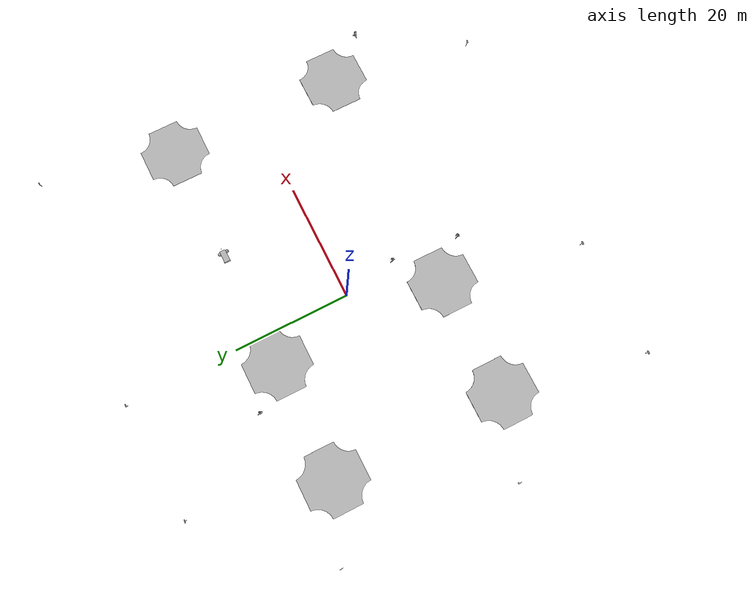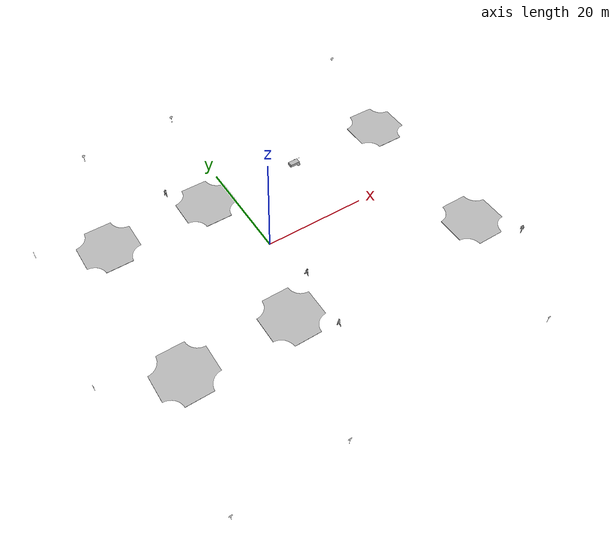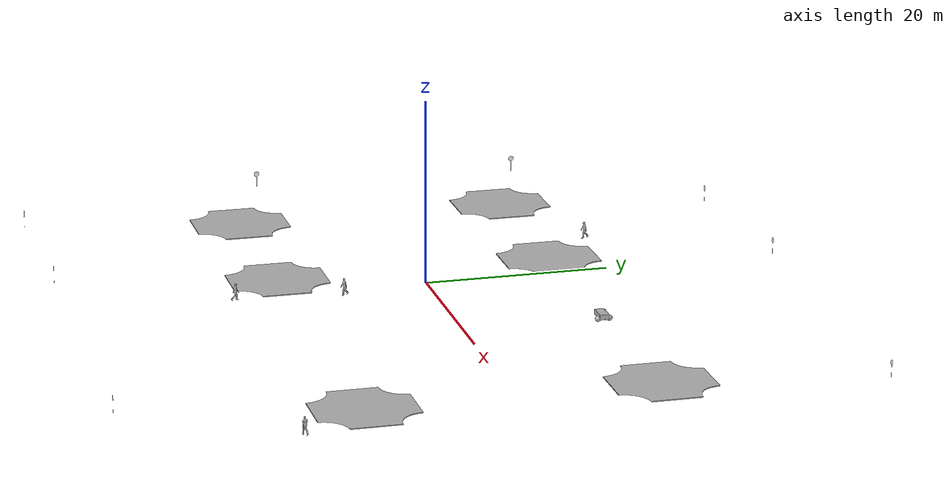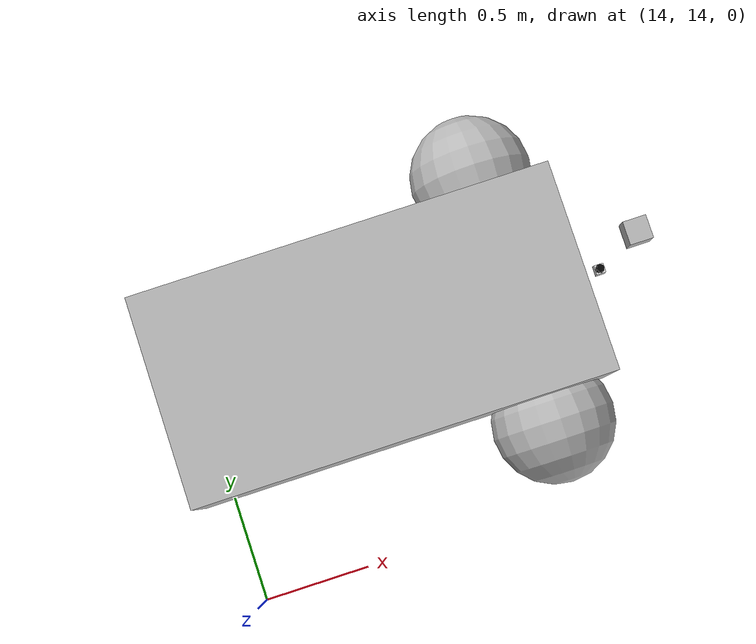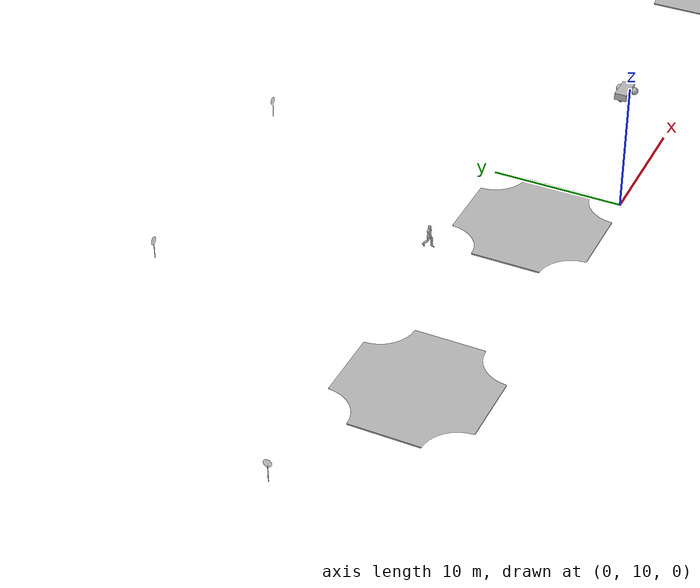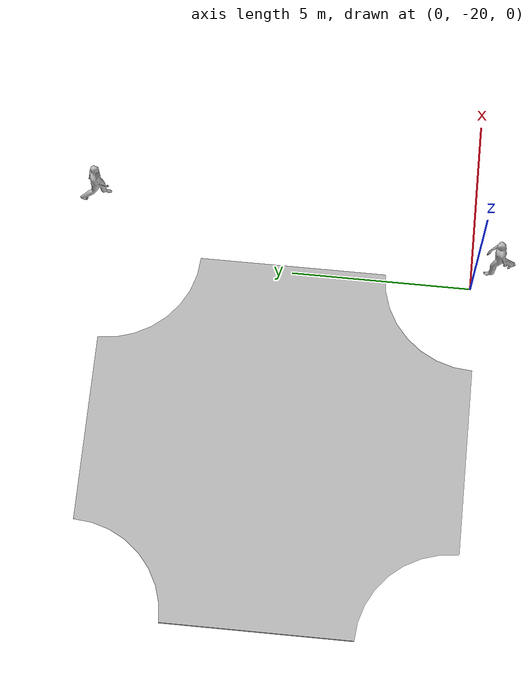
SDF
<sdf version="1.6">
 <world name="road test">
  <scene>
   <ambient>120 120 120 255</ambient>
   <sky><time>12</time></sky>
   <background>0.7 0.7 0.7 1</background>
   <shadows>1</shadows>
  </scene>
  <include><uri>model://road_intersection</uri><pose>-25.0 -15.0 0 0 0 1.57</pose></include>
  <include><uri>model://road_intersection</uri><pose>-25.0 15.0 0 0 0 1.57</pose></include>
  <include><uri>model://road_intersection</uri><pose>-5.0 -15.0 0 0 0 1.57</pose></include>
  <include><uri>model://road_intersection</uri><pose>-5.0 15.0 0 0 0 1.57</pose></include>
  <include><uri>model://road_intersection</uri><pose>35.0 -15.0 0 0 0 1.57</pose></include>
  <include><uri>model://road_intersection</uri><pose>35.0 15.0 0 0 0 1.57</pose></include>
  <include><uri>model://my_robot</uri><pose>15 15 0 0 0 0</pose></include>
  <light name="sun" type="directional">
   <pose>0 0 10 0 -0 0</pose>
   <diffuse>0.8 0.8 0.8 1</diffuse>
   <specular>0.2 0.2 0.2 1</specular>
   <attenuation>
    <range>1000</range>
    <constant>0.9</constant>
    <linear>0.01</linear>
    <quadratic>0.001</quadratic>
   </attenuation>
   <direction>-0.5 0.1 -0.9</direction>
  </light>
  <gravity>0 0 -9.8</gravity>
  <magnetic_field>6e-06 2.3e-05 -4.2e-05</magnetic_field>
  <atmosphere type="adiabatic"/>
  <physics name="default_physics" default="0" type="ode">
   <max_step_size>0.005</max_step_size>
   <real_time_factor>1</real_time_factor>
   <real_time_update_rate>500</real_time_update_rate>
  </physics>
  <audio><device>default</device></audio>
  <spherical_coordinates>
   <surface_model>EARTH_WGS84</surface_model>
   <latitude_deg>0</latitude_deg>
   <longitude_deg>0</longitude_deg>
   <elevation>0</elevation>
   <heading_deg>0</heading_deg>
  </spherical_coordinates>
  <model name="person_walking">
   <link name="link">
    <inertial>
     <pose>0 0 0.95 0 -0 0</pose>
     <mass>80</mass>
     <inertia><ixx>27.82</ixx><ixy>0</ixy><ixz>0</ixz><iyy>24.88</iyy><iyz>0</iyz><izz>4.57</izz></inertia>
    </inertial>
    <collision name="bottom">
     <pose>0 0 0.01 0 -0 0</pose>
     <geometry><box><size>0.35 0.75 0.02</size></box></geometry>
    </collision>
    <collision name="person">
     <pose>0 0 -0.02 0 -0 0</pose>
     <geometry><mesh><uri>model://person_walking/meshes/walking.dae</uri></mesh></geometry>
    </collision>
    <visual name="visual">
     <pose>0 0 -0.02 0 -0 0</pose>
     <geometry><mesh><uri>model://person_walking/meshes/walking.dae</uri></mesh></geometry>
    </visual>
   </link>
   <pose>1.85044 -9.26744 1.1e-05 -1.6e-05 7.1e-05 0.146744</pose>
  </model>
  <model name="person_walking_clone">
   <link name="link">
    <inertial>
     <pose>0 0 0.95 0 -0 0</pose>
     <mass>80</mass>
     <inertia><ixx>27.82</ixx><ixy>0</ixy><ixz>0</ixz><iyy>24.88</iyy><iyz>0</iyz><izz>4.57</izz></inertia>
    </inertial>
    <collision name="bottom">
     <pose>0 0 0.01 0 -0 0</pose>
     <geometry><box><size>0.35 0.75 0.02</size></box></geometry>
    </collision>
    <collision name="person">
     <pose>0 0 -0.02 0 -0 0</pose>
     <geometry><mesh><uri>model://person_walking/meshes/walking.dae</uri></mesh></geometry>
    </collision>
    <visual name="visual">
     <pose>0 0 -0.02 0 -0 0</pose>
     <geometry><mesh><uri>model://person_walking/meshes/walking.dae</uri></mesh></geometry>
    </visual>
   </link>
   <pose>40.6478 -22.075 0.001486 0.003302 -0.001382 -1.41158</pose>
  </model>
  <model name="person_walking_clone_0">
   <link name="link">
    <inertial>
     <pose>0 0 0.95 0 -0 0</pose>
     <mass>80</mass>
     <inertia><ixx>27.82</ixx><ixy>0</ixy><ixz>0</ixz><iyy>24.88</iyy><iyz>0</iyz><izz>4.57</izz></inertia>
    </inertial>
    <collision name="bottom">
     <pose>0 0 0.01 0 -0 0</pose>
     <geometry><box><size>0.35 0.75 0.02</size></box></geometry>
    </collision>
    <collision name="person">
     <pose>0 0 -0.02 0 -0 0</pose>
     <geometry><mesh><uri>model://person_walking/meshes/walking.dae</uri></mesh></geometry>
    </collision>
    <visual name="visual">
     <pose>0 0 -0.02 0 -0 0</pose>
     <geometry><mesh><uri>model://person_walking/meshes/walking.dae</uri></mesh></geometry>
    </visual>
   </link>
   <pose>-10.6643 20.7362 -0.023991 5e-06 -1.7e-05 -0.004848</pose>
  </model>
  <model name="person_walking_clone_1">
   <link name="link">
    <inertial>
     <pose>0 0 0.95 0 -0 0</pose>
     <mass>80</mass>
     <inertia><ixx>27.82</ixx><ixy>0</ixy><ixz>0</ixz><iyy>24.88</iyy><iyz>0</iyz><izz>4.57</izz></inertia>
    </inertial>
    <collision name="bottom">
     <pose>0 0 0.01 0 -0 0</pose>
     <geometry><box><size>0.35 0.75 0.02</size></box></geometry>
    </collision>
    <collision name="person">
     <pose>0 0 -0.02 0 -0 0</pose>
     <geometry><mesh><uri>model://person_walking/meshes/walking.dae</uri></mesh></geometry>
    </collision>
    <visual name="visual">
     <pose>0 0 -0.02 0 -0 0</pose>
     <geometry><mesh><uri>model://person_walking/meshes/walking.dae</uri></mesh></geometry>
    </visual>
   </link>
   <pose>0.652031 -20.7288 7e-06 -2e-06 8e-06 -3.07384</pose>
  </model>
  <model name="Stop Sign">
   <static>1</static>
   <link name="link">
    <collision name="collision">
     <geometry><mesh><uri>model://stop_sign/meshes/stop_sign.dae</uri></mesh></geometry>
    </collision>
    <visual name="visual">
     <geometry><mesh><uri>model://stop_sign/meshes/stop_sign.dae</uri></mesh></geometry>
     <material>
      <script>
       <uri>model://stop_sign/materials/scripts</uri>
       <uri>model://stop_sign/materials/textures</uri>
       <name>StopSign/Diffuse</name>
      </script>
     </material>
    </visual>
   </link>
   <pose>39.4901 37.3203 0 0 -0 0</pose>
  </model>
  <model name="Stop Sign_clone">
   <static>1</static>
   <link name="link">
    <collision name="collision">
     <geometry><mesh><uri>model://stop_sign/meshes/stop_sign.dae</uri></mesh></geometry>
    </collision>
    <visual name="visual">
     <geometry><mesh><uri>model://stop_sign/meshes/stop_sign.dae</uri></mesh></geometry>
     <material>
      <script>
       <uri>model://stop_sign/materials/scripts</uri>
       <uri>model://stop_sign/materials/textures</uri>
       <name>StopSign/Diffuse</name>
      </script>
     </material>
    </visual>
   </link>
   <pose>-0.289163 38.9442 0 0 -0 0</pose>
  </model>
  <model name="Stop Sign_clone_0">
   <static>1</static>
   <link name="link">
    <collision name="collision">
     <geometry><mesh><uri>model://stop_sign/meshes/stop_sign.dae</uri></mesh></geometry>
    </collision>
    <visual name="visual">
     <geometry><mesh><uri>model://stop_sign/meshes/stop_sign.dae</uri></mesh></geometry>
     <material>
      <script>
       <uri>model://stop_sign/materials/scripts</uri>
       <uri>model://stop_sign/materials/textures</uri>
       <name>StopSign/Diffuse</name>
      </script>
     </material>
    </visual>
   </link>
   <pose>-20.2345 37.7955 0 0 -0 0</pose>
  </model>
  <model name="Stop Sign_clone_1">
   <static>1</static>
   <link name="link">
    <collision name="collision">
     <geometry><mesh><uri>model://stop_sign/meshes/stop_sign.dae</uri></mesh></geometry>
    </collision>
    <visual name="visual">
     <geometry><mesh><uri>model://stop_sign/meshes/stop_sign.dae</uri></mesh></geometry>
     <material>
      <script>
       <uri>model://stop_sign/materials/scripts</uri>
       <uri>model://stop_sign/materials/textures</uri>
       <name>StopSign/Diffuse</name>
      </script>
     </material>
    </visual>
   </link>
   <pose>-36.9588 19.6162 0 0 -0 1.65143</pose>
  </model>
  <model name="Stop Sign_clone_1_clone">
   <static>1</static>
   <link name="link">
    <collision name="collision">
     <geometry><mesh><uri>model://stop_sign/meshes/stop_sign.dae</uri></mesh></geometry>
    </collision>
    <visual name="visual">
     <geometry><mesh><uri>model://stop_sign/meshes/stop_sign.dae</uri></mesh></geometry>
     <material>
      <script>
       <uri>model://stop_sign/materials/scripts</uri>
       <uri>model://stop_sign/materials/textures</uri>
       <name>StopSign/Diffuse</name>
      </script>
     </material>
    </visual>
   </link>
   <pose>-38.1531 -10.3729 0 0 -0 1.65143</pose>
  </model>
  <model name="Stop Sign_clone_1_clone_0">
   <static>1</static>
   <link name="link">
    <collision name="collision">
     <geometry><mesh><uri>model://stop_sign/meshes/stop_sign.dae</uri></mesh></geometry>
    </collision>
    <visual name="visual">
     <geometry><mesh><uri>model://stop_sign/meshes/stop_sign.dae</uri></mesh></geometry>
     <material>
      <script>
       <uri>model://stop_sign/materials/scripts</uri>
       <uri>model://stop_sign/materials/textures</uri>
       <name>StopSign/Diffuse</name>
      </script>
     </material>
    </visual>
   </link>
   <pose>-29.8426 -38.4273 0 0 -0 3.08754</pose>
  </model>
  <model name="Stop Sign_clone_1_clone_0_clone">
   <static>1</static>
   <link name="link">
    <collision name="collision">
     <geometry><mesh><uri>model://stop_sign/meshes/stop_sign.dae</uri></mesh></geometry>
    </collision>
    <visual name="visual">
     <geometry><mesh><uri>model://stop_sign/meshes/stop_sign.dae</uri></mesh></geometry>
     <material>
      <script>
       <uri>model://stop_sign/materials/scripts</uri>
       <uri>model://stop_sign/materials/textures</uri>
       <name>StopSign/Diffuse</name>
      </script>
     </material>
    </visual>
   </link>
   <pose>-9.70659 -38.2216 0 0 -0 3.08754</pose>
  </model>
  <model name="Stop Sign_clone_1_clone_0_clone_0">
   <static>1</static>
   <link name="link">
    <collision name="collision">
     <geometry><mesh><uri>model://stop_sign/meshes/stop_sign.dae</uri></mesh></geometry>
    </collision>
    <visual name="visual">
     <geometry><mesh><uri>model://stop_sign/meshes/stop_sign.dae</uri></mesh></geometry>
     <material>
      <script>
       <uri>model://stop_sign/materials/scripts</uri>
       <uri>model://stop_sign/materials/textures</uri>
       <name>StopSign/Diffuse</name>
      </script>
     </material>
    </visual>
   </link>
   <pose>30.3244 -38.6811 0 0 -0 3.08754</pose>
  </model>
 </world>
</sdf>

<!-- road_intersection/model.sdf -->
<sdf version="1.6">
  <model name="road_intersection">
    <pose>0 0 0 0 0 0</pose>
    <static>true</static>
    <link name="link">
      <visual name="visual">
        <geometry>
          <mesh>
            <uri>model://road_intersection/meshes/road_intersection.dae</uri>
          </mesh>
        </geometry>
      </visual>
      <collision name="collision">
        <geometry>
          <mesh>
            <uri>model://road_intersection/meshes/road_intersection.dae</uri>
          </mesh>
        </geometry>
      </collision>
    </link>
  </model>
</sdf>

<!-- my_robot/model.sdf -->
<sdf version="1.6">

    <model name='vehicle'>
      <pose>0 0 0.325 0 -0 0</pose>

      <link name='chassis'>
        <pose>-0.151427 -0 0.175 0 -0 0</pose>
        <inertial>
          <mass>1.14395</mass>
          <inertia>
            <ixx>0.126164</ixx>
            <ixy>0</ixy>
            <ixz>0</ixz>
            <iyy>0.416519</iyy>
            <iyz>0</iyz>
            <izz>0.481014</izz>
          </inertia>
        </inertial>
        <visual name='visual'>
          <geometry>
            <box>
              <size>2.01142 1 0.568726</size>
            </box>
          </geometry>
        </visual>
        <collision name='collision'>
          <geometry>
            <box>
              <size>2.01142 1 0.568726</size>
            </box>
          </geometry>
        </collision>
      </link>

      <link name='left_wheel'>
        <pose>0.554283 0.625029 -0.025 -1.5707 0 0</pose>
        <inertial>
          <mass>2</mass>
          <inertia>
            <ixx>0.145833</ixx>
            <ixy>0</ixy>
            <ixz>0</ixz>
            <iyy>0.145833</iyy>
            <iyz>0</iyz>
            <izz>0.125</izz>
          </inertia>
        </inertial>
        <visual name='visual'>
          <geometry>
            <sphere>
              <radius>0.3</radius>
            </sphere>
          </geometry>
        </visual>
        <collision name='collision'>
          <geometry>
            <sphere>
              <radius>0.3</radius>
            </sphere>
          </geometry>
          <surface>
            <friction>
              <ode>
                <mu>1</mu>
                <mu2>1</mu2>
                <slip1>0</slip1>
                <slip2>0</slip2>
              </ode>
            </friction>
            <contact>
              <ode>
                <soft_cfm>0</soft_cfm>
                <soft_erp>0.2</soft_erp>
                <kp>1e+13</kp>
                <kd>1</kd>
                <max_vel>0.01</max_vel>
                <min_depth>0.01</min_depth>
              </ode>
            </contact>
          </surface>
        </collision>
      </link>

      <link name='right_wheel'>
        <pose>0.554282 -0.625029 -0.025 -1.5707 0 0</pose>
        <inertial>
          <mass>2</mass>
          <inertia>
            <ixx>0.145833</ixx>
            <ixy>0</ixy>
            <ixz>0</ixz>
            <iyy>0.145833</iyy>
            <iyz>0</iyz>
            <izz>0.125</izz>
          </inertia>
        </inertial>
        <visual name='visual'>
          <geometry>
            <sphere>
              <radius>0.3</radius>
            </sphere>
          </geometry>
        </visual>
        <collision name='collision'>
          <geometry>
            <sphere>
              <radius>0.3</radius>
            </sphere>
          </geometry>
          <surface>
            <friction>
              <ode>
                <mu>1</mu>
                <mu2>1</mu2>
                <slip1>0</slip1>
                <slip2>0</slip2>
              </ode>
            </friction>
            <contact>
              <ode>
                <soft_cfm>0</soft_cfm>
                <soft_erp>0.2</soft_erp>
                <kp>1e+13</kp>
                <kd>1</kd>
                <max_vel>0.01</max_vel>
                <min_depth>0.01</min_depth>
              </ode>
            </contact>
          </surface>
        </collision>
      </link>

      <link name='caster'>
        <pose>-0.957138 -0 -0.125 0 -0 0</pose>
        <inertial>
          <mass>1</mass>
          <inertia>
            <ixx>0.1</ixx>
            <ixy>0</ixy>
            <ixz>0</ixz>
            <iyy>0.1</iyy>
            <iyz>0</iyz>
            <izz>0.1</izz>
          </inertia>
        </inertial>
        <visual name='visual'>
          <geometry>
            <sphere>
              <radius>0.2</radius>
            </sphere>
          </geometry>
        </visual>
        <collision name='collision'>
          <geometry>
            <sphere>
              <radius>0.2</radius>
            </sphere>
          </geometry>
        </collision>
      </link>

      <joint name='left_wheel_joint' type='revolute'>
        <parent>chassis</parent>
        <child>left_wheel</child>
        <axis>
          <xyz>0 0 1</xyz>
          <limit>
            <lower>-1.79769e+308</lower>
            <upper>1.79769e+308</upper>
          </limit>
        </axis>
      </joint>

      <joint name='right_wheel_joint' type='revolute'>
        <parent>chassis</parent>
        <child>right_wheel</child>
        <axis>
          <xyz>0 0 1</xyz>
          <limit>
            <lower>-1.79769e+308</lower>
            <upper>1.79769e+308</upper>
          </limit>
        </axis>
      </joint>

      <joint name='caster_wheel' type='ball'>
        <parent>chassis</parent>
        <child>caster</child>
      </joint>
    <include>
      <uri>model://hokuyo</uri>
      <pose>1 0.0 0.0 0 0 0</pose>
    </include>
    <joint name="hokuyo_joint" type="fixed">
      <child>depth_camera::camera_link</child>
      <parent>chassis</parent>
    </joint>

    <include>
      <uri>model://depth_camera</uri>
      <pose>1 0.0 1 0 0 0</pose>
    </include>
    <joint name="camera_joint" type="fixed">
      <child>hokuyo::hokuyo_link</child>
      <parent>chassis</parent>
    </joint>

      <plugin name='diff_drive' filename='libgazebo_ros_diff_drive.so'>

        <ros>
          <argument>cmd_vel</argument>
          <argument>odom:=odom</argument>
        </ros>

        <!-- wheels -->
        <left_joint>left_wheel_joint</left_joint>
        <right_joint>right_wheel_joint</right_joint>

        <!-- kinematics -->
        <wheel_separation>1.25</wheel_separation>
        <wheel_diameter>0.6</wheel_diameter>

        <!-- limits -->
        <max_wheel_torque>20</max_wheel_torque>
        <max_wheel_acceleration>1.0</max_wheel_acceleration>

        <!-- output -->
        <publish_odom>true</publish_odom>
        <publish_odom_tf>true</publish_odom_tf>
        <publish_wheel_tf>true</publish_wheel_tf>

        <odometry_frame>odom</odometry_frame>
        <robot_base_frame>chassis</robot_base_frame>

      </plugin>

    </model>

</sdf>

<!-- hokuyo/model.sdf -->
<sdf version="1.5">
  <model name="hokuyo">
    <pose>0 0 0.035 0 0 0</pose>
    <link name="hokuyo_link">
      <inertial>
        <mass>0.1</mass>
      </inertial>
      <visual name="visual">
        <geometry>
          <mesh>
            <uri>model://hokuyo/meshes/hokuyo.dae</uri>
          </mesh>
        </geometry>
      </visual>
      <collision name="collision-base">
        <pose>0 0 -0.0145 0 0 0</pose>
        <geometry>
          <box>
            <size>0.05 0.05 0.041</size>
          </box>
        </geometry>
      </collision>
      <collision name="collision-top">
        <pose>0 0 0.0205 0 0 0</pose>
        <geometry>
          <cylinder>
            <radius>0.021</radius>
            <length>0.029</length>
          </cylinder>
        </geometry>
      </collision>
      <sensor name="laser" type="ray">
        <pose>0.01 0 0.0175 0 -0 0</pose>
        <ray>
          <scan>
            <horizontal>
              <samples>320</samples>
              <resolution>1</resolution>
              <min_angle>-0.45</min_angle>
              <max_angle>0.45</max_angle>
            </horizontal>
          </scan>
          <range>
            <min>0.08</min>
            <max>16</max>
            <resolution>0.01</resolution>
          </range>
        </ray>
 	<always_on>1</always_on>
        <update_rate>30</update_rate>
        <visualize>true</visualize>
       <plugin name="laser" filename="/opt/ros/crystal/lib/libgazebo_ros_ray_sensor.so">
      	 <ros>
          <namespace>/laser</namespace>
          <argument>~/out:=pointcloud2</argument>
         </ros>
      <!-- Set output to sensor_msgs/LaserScan to get same output type as gazebo_ros_laser -->
         <output_type>sensor_msgs/PointCloud2</output_type>
       </plugin>
       <plugin name="laser" filename="/opt/ros/crystal/lib/libgazebo_ros_ray_sensor.so">
      	 <ros>
          <namespace>/laser</namespace>
          <argument>~/out:=range</argument>
         </ros>
      <!-- Set output to sensor_msgs/LaserScan to get same output type as gazebo_ros_laser -->
         <output_type>sensor_msgs/Range</output_type>
       </plugin>
      </sensor>
    </link>
  </model>
</sdf>

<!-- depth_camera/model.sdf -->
<sdf version="1.6">
  <model name="depth_camera">
    <link name="camera_link">
      <pose>0 0 0.05 0 0 0</pose>
      <inertial>
        <mass>0.1</mass>
        <inertia>
          <ixx>0.000166667</ixx>
          <iyy>0.000166667</iyy>
          <izz>0.000166667</izz>
        </inertia>
      </inertial>
      <collision name="collision">
        <geometry>
          <box>
            <size>0.1 0.1 0.1</size>
          </box>
        </geometry>
      </collision>
      <visual name="visual">
        <geometry>
          <box>
            <size>0.1 0.1 0.1</size>
          </box>
        </geometry>
      </visual>
      <sensor name="camera" type="camera">
  <update_rate>0</update_rate>
   <camera>
	<horizontal_fov>1.3</horizontal_fov>
          <image>
            <width>1024</width>
            <height>768</height>
          </image>
          <clip>
            <near>0.1</near>
            <far>100</far>
          </clip>
        </camera>

        <!-- Use camera, not camera_triggered -->
          <plugin name="plugin_name" filename="libgazebo_ros_camera.so">
            <ros>
              <namespace>custom_ns</namespace>
              <argument>image_raw:=custom_img</argument>
              <argument>camera_info:=custom_info</argument>
            </ros>

            <!-- Set camera name. If empty, defaults to sensor name (i.e. "sensor_name") -->
            <camera_name>depth_camera</camera_name>

            <!-- Set TF frame name. If empty, defaults to link name (i.e. "link_name") -->
            <frame_name>camera_link</frame_name>

            <hack_baseline>0.07</hack_baseline>
            <!-- No need to repeat distortion parameters or to set autoDistortion -->
          </plugin>
     </sensor>
    </link>
  </model>
</sdf>
